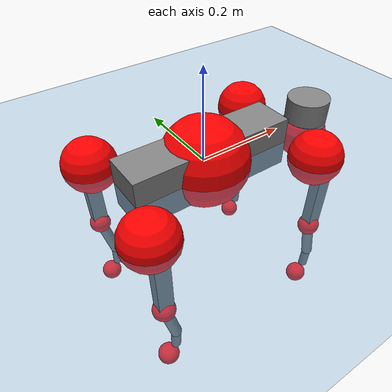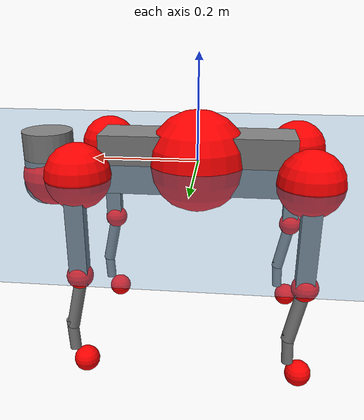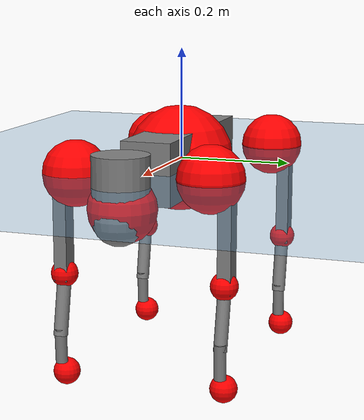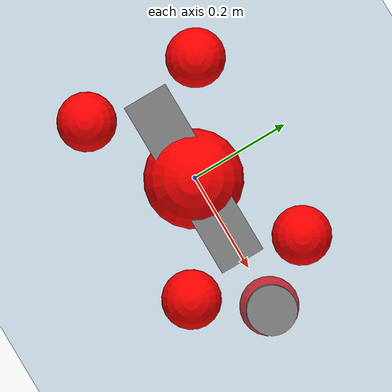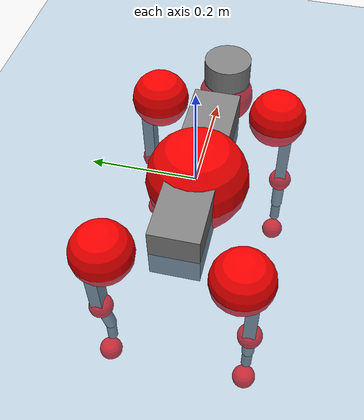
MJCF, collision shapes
<mujoco model="go2">
  <compiler angle="radian" assetdir="assets" balanceinertia="true" inertiafromgeom="false"/>

  <option timestep="0.005" density="1.2" viscosity="2e-05"/>

  <size nkey="1"/>

  <visual>
    <quality shadowsize="8192"/>
    <map shadowclip="0.5"/>
  </visual>

  <default>
    <default class="/">
      <geom contype="0" conaffinity="0" group="1" solref="-1000 -80"/>
      <site size="0.01 0.005 0.005" group="5"/>
      <general forcelimited="true" biastype="affine" gainprm="20" biasprm="0 -20 -0.5"/>
      <default class="go2">
        <joint armature="0.01" damping="0.01" frictionloss="0.2"/>
        <geom condim="1" margin="0.001"/>
        <default class="visual">
          <geom type="mesh" group="2"/>
        </default>
        <default class="collision">
          <geom group="3"/>
          <default class="foot">
            <geom size="0.022 0 0" condim="6" priority="1" friction="0.8 0.02 0.01" solimp="0.015 1 0.022"/>
          </default>
        </default>
        <default class="reward_collision_sphere">
          <geom group="5" rgba="1 0 0 1"/>
        </default>
      </default>
    </default>
  </default>

  <asset>
    <texture type="skybox" colorspace="auto" name="//unnamed_texture_0" builtin="gradient" rgb1="0.95 0.95 0.95" rgb2="0.95 0.95 0.95" width="100" height="600"/>
    <texture type="2d" colorspace="auto" name="texplane" builtin="checker" rgb1="0.345 0.575 0.748" rgb2="0.345 0.575 0.748" markrgb="1 1 1" width="512" height="512"/>
    <material name="MatPlane" class="/" texture="texplane" texuniform="true" texrepeat="2 2" specular="0.9"/>
    <material name="metal" class="/" rgba="0.9 0.95 0.95 1"/>
    <material name="black" class="/" rgba="0 0 0 1"/>
    <material name="white" class="/"/>
    <material name="gray" class="/" rgba="0.671705 0.692426 0.77427 1"/>
    <mesh name="base_0" class="/" file="base_0.obj"/>
    <mesh name="base_1" class="/" file="base_1.obj"/>
    <mesh name="base_2" class="/" file="base_2.obj"/>
    <mesh name="base_3" class="/" file="base_3.obj"/>
    <mesh name="base_4" class="/" file="base_4.obj"/>
    <mesh name="hip_0" class="/" file="hip_0.obj"/>
    <mesh name="hip_1" class="/" file="hip_1.obj"/>
    <mesh name="thigh_0" class="/" file="thigh_0.obj"/>
    <mesh name="thigh_1" class="/" file="thigh_1.obj"/>
    <mesh name="thigh_mirror_0" class="/" file="thigh_mirror_0.obj"/>
    <mesh name="thigh_mirror_1" class="/" file="thigh_mirror_1.obj"/>
    <mesh name="calf_0" class="/" file="calf_0.obj"/>
    <mesh name="calf_1" class="/" file="calf_1.obj"/>
    <mesh name="calf_mirror_0" class="/" file="calf_mirror_0.obj"/>
    <mesh name="calf_mirror_1" class="/" file="calf_mirror_1.obj"/>
    <mesh name="foot" class="/" file="foot.obj"/>
  </asset>

  <worldbody>
    <geom name="floor" class="/" size="100 100 0.125" type="plane" group="0" material="MatPlane"/>
    <light name="toplight_shadow" class="/" pos="0 0 5" dir="0.0990148 0.0990148 -0.990148" type="directional" ambient="0.04 0.04 0.04" diffuse="0.55 0.55 0.55" specular="0.12 0.12 0.12"/>
    <light name="toplight_fill" class="/" pos="0 0 5" dir="0.0990148 0.0990148 -0.990148" type="directional" castshadow="false" ambient="0.04 0.04 0.04" diffuse="0.3 0.3 0.3" specular="0.08 0.08 0.08"/>
    <body name="trunk" childclass="go2" pos="0.000329193 -0.00253485 -0.000177173" quat="1 -8.73511e-06 1.35335e-06 1.00742e-05">
      <inertial pos="0.0210752 -0.00281038 -0.00476195" quat="0.00860058 0.709463 0.00318203 0.704683" mass="6.15356" diaginertia="0.116008 0.111719 0.0109153"/>
      <joint name="//unnamed_joint_0" type="free" armature="0" damping="0" frictionloss="0"/>
      <geom name="//unnamed_geom_1" class="visual" material="black" mesh="base_0"/>
      <geom name="//unnamed_geom_2" class="visual" material="black" mesh="base_1"/>
      <geom name="//unnamed_geom_3" class="visual" material="black" mesh="base_2"/>
      <geom name="//unnamed_geom_4" class="visual" material="white" mesh="base_3"/>
      <geom name="//unnamed_geom_5" class="visual" material="gray" mesh="base_4"/>
      <geom name="trunk_1" class="collision" size="0.181949 0.0452213 0.0551362" type="box"/>
      <geom name="trunk_2" class="collision" size="0.0483651 0.0435286" pos="0.290544 0 0.00851928" type="cylinder"/>
      <geom name="trunk_3" class="collision" size="0.0454632" pos="0.2987 0 -0.0511157"/>
      <geom name="//unnamed_geom_9" class="reward_collision_sphere" size="0.0967302"/>
      <geom name="//unnamed_geom_10" class="reward_collision_sphere" size="0.0580381" pos="0.285447 0 -0.0383368"/>
      <site name="imu" pos="-0.013831 0.00713483 0.0233988" size="0.00967302"/>
      <camera name="track" pos="0 -2.06105 0" quat="0.707107 0.707107 0 0" mode="trackcom"/>
      <camera name="ego_camera" pos="0.31807 0 0.0383368" quat="-0.5 -0.5 0.5 0.5"/>
      <body name="FL_hip" pos="0.19867 0.0503474 0.00271853" quat="0.999999 -0.000681184 -0.000972273 -3.25821e-05">
        <inertial pos="-0.00456402 0.00220274 0.00115122" quat="0.496958 0.500508 0.503902 0.498605" mass="0.590508" diaginertia="0.000971988 0.000662246 0.000215765"/>
        <joint name="FL_hip_joint" pos="0 0 0" axis="0.999998 0.00123081 -0.00139735" stiffness="0.0149971" range="-1.00179 1.0701" armature="0.00937935" damping="0" frictionloss="0.213623"/>
        <geom name="//unnamed_geom_11" class="visual" material="metal" mesh="hip_0"/>
        <geom name="//unnamed_geom_12" class="visual" material="gray" mesh="hip_1"/>
        <geom name="//unnamed_geom_13" class="collision" size="0.0444959 0.019346" pos="0 0.0824418 0" quat="0.707107 0.707107 0 0" type="cylinder"/>
        <geom name="//unnamed_geom_14" class="reward_collision_sphere" size="0.0580381" pos="0 0.0721366 0"/>
        <body name="FL_thigh" pos="0.000113166 0.100707 0.00132641" quat="0.999999 -0.000738063 -0.00088253 0.000554044">
          <inertial pos="-0.0016411 -0.021218 -0.0288137" quat="0.836112 0.0798409 -0.0138604 0.542541" mass="1.04198" diaginertia="0.00656291 0.00684471 0.000399789"/>
          <joint name="FL_thigh_joint" pos="0 0 0" axis="-0.0111333 0.999832 -0.0145595" stiffness="0.00672732" range="-1.55056 3.54538" armature="0.0109589" damping="0" frictionloss="0.192067"/>
          <geom name="//unnamed_geom_15" class="visual" material="metal" mesh="thigh_0"/>
          <geom name="//unnamed_geom_16" class="visual" material="gray" mesh="thigh_1"/>
          <geom name="//unnamed_geom_17" class="collision" size="0.103018 0.0118494 0.0164441" pos="0 0 -0.0907304" quat="0.707107 0 0.707107 0" type="box"/>
          <body name="FL_calf" pos="0.000827667 -0.00311188 -0.181686" quat="1 0.000303142 -6.97668e-05 0.000554145">
            <inertial pos="0.00846653 -0.000440176 -0.122597" quat="0.710886 0.000364986 -0.00334301 0.703299" mass="0.219396" diaginertia="0.00158394 0.00175167 2.29692e-05"/>
            <joint name="FL_calf_joint" pos="0 0 0" axis="-0.00120647 0.999982 -0.00586044" range="-2.7741 -0.839627" armature="0.00878362" damping="0.00337393" frictionloss="0.192199"/>
            <geom name="//unnamed_geom_18" class="visual" material="gray" mesh="calf_0"/>
            <geom name="//unnamed_geom_19" class="visual" material="black" mesh="calf_1"/>
            <geom name="FL_calf0" class="collision" size="0.0116076 0.0580381" pos="0.00815563 0 -0.0511157" quat="0.994493 0 -0.104807 0" type="cylinder"/>
            <geom name="//unnamed_geom_21" class="collision" size="0.0106403 0.0314373" pos="0.0203891 0 -0.126085" quat="0.999688 0 0.0249974 0" type="cylinder"/>
            <geom name="//unnamed_geom_22" class="visual" pos="0 0 -0.181461" quat="1 0 0 0" material="black" mesh="foot"/>
            <geom name="FL_foot" class="foot" size="0.0161607" pos="-0.00203891 0 -0.181461"/>
            <geom name="//unnamed_geom_24" class="reward_collision_sphere" size="0.0241825"/>
            <geom name="//unnamed_geom_25" class="reward_collision_sphere" size="0.0241825" pos="-0.00203891 0 -0.181461"/>
            <site name="FL_foot" class="foot" pos="-0.00203891 0 -0.181461" size="0.00967302"/>
          </body>
        </body>
      </body>
      <body name="FR_hip" pos="0.196545 -0.0495972 -0.00226328" quat="1 -0.000182956 0.000167186 0.000246675">
        <inertial pos="-0.00480939 -0.00289316 -0.00107604" quat="0.499509 0.505266 0.498464 0.49672" mass="0.591916" diaginertia="0.00098012 0.000671452 0.000222188"/>
        <joint name="FR_hip_joint" pos="0 0 0" axis="0.999956 0.00886747 0.00300283" range="-1.04833 1.04297" armature="0.0093129" damping="0.012576" frictionloss="0.190848"/>
        <geom name="//unnamed_geom_26" class="visual" pos="0 1.55584e-09 6.67331e-08" quat="4.63268e-05 1 0 0" material="metal" mesh="hip_0"/>
        <geom name="//unnamed_geom_27" class="visual" pos="0 2.5222e-09 -1.65057e-07" quat="4.63268e-05 1 0 0" material="gray" mesh="hip_1"/>
        <geom name="//unnamed_geom_28" class="collision" size="0.0444959 0.019346" pos="0 -0.0824418 0" quat="0.707107 0.707107 0 0" type="cylinder"/>
        <geom name="//unnamed_geom_29" class="reward_collision_sphere" size="0.0580381" pos="0 -0.0721366 0"/>
        <body name="FR_thigh" pos="0.00289101 -0.0962619 0.00284624" quat="1 -0.000400607 0.000167702 0.00015982">
          <inertial pos="-0.00313882 0.0204908 -0.0280404" quat="0.552136 -0.012602 0.081177 0.829697" mass="1.10827" diaginertia="0.00677036 0.00700428 0.000407639"/>
          <joint name="FR_thigh_joint" pos="0 0 0" axis="0.000460677 -0.999999 0.00154782" stiffness="0.00127316" range="-3.54357 1.57218" armature="0.00948406" damping="0.0103425" frictionloss="0.193793"/>
          <geom name="//unnamed_geom_30" class="visual" material="metal" mesh="thigh_mirror_0"/>
          <geom name="//unnamed_geom_31" class="visual" material="gray" mesh="thigh_mirror_1"/>
          <geom name="//unnamed_geom_32" class="collision" size="0.103018 0.0118494 0.0164441" pos="0 0 -0.0907304" quat="0.707107 0 0.707107 0" type="box"/>
          <body name="FR_calf" pos="-0.00294297 -0.000545723 -0.182931" quat="0.999999 -0.000784601 -0.00102148 -0.000477379">
            <inertial pos="0.00669082 0.000714082 -0.118752" quat="0.698101 -0.000992564 0.00397129 0.715988" mass="0.218032" diaginertia="0.00161877 0.00169664 2.36755e-05"/>
            <joint name="FR_calf_joint" pos="0 0 0" axis="0.00464867 -0.999919 -0.0118109" range="0.817564 2.73183" armature="0.0109192" damping="0.023239" frictionloss="0.167153"/>
            <geom name="//unnamed_geom_33" class="visual" material="gray" mesh="calf_mirror_0"/>
            <geom name="//unnamed_geom_34" class="visual" material="black" mesh="calf_mirror_1"/>
            <geom name="FR_calf0" class="collision" size="0.0125749 0.0580381" pos="0.0101945 0 -0.0511157" quat="0.995004 0 -0.0998334 0" type="cylinder"/>
            <geom name="//unnamed_geom_36" class="collision" size="0.0106403 0.0314373" pos="0.0203891 0 -0.126085" quat="0.999688 0 0.0249974 0" type="cylinder"/>
            <geom name="//unnamed_geom_37" class="visual" pos="0 0 -0.181461" quat="1 0 0 0" material="black" mesh="foot"/>
            <geom name="FR_foot" class="foot" size="0.0205817" pos="-0.00203891 0 -0.181461"/>
            <geom name="//unnamed_geom_39" class="reward_collision_sphere" size="0.0241825"/>
            <geom name="//unnamed_geom_40" class="reward_collision_sphere" size="0.0241825" pos="-0.00203891 0 -0.181461"/>
            <site name="FR_foot" class="foot" pos="-0.00203891 0 -0.181461" size="0.00967302"/>
          </body>
        </body>
      </body>
      <body name="RL_hip" pos="-0.197216 0.049215 0.00146559" quat="1 -7.93765e-05 3.12923e-05 -9.95463e-05">
        <inertial pos="0.00513487 -0.0003747 0.00152291" quat="0.504628 0.500605 0.494467 0.500248" mass="0.610295" diaginertia="0.000974398 0.000696051 0.000216813"/>
        <joint name="RL_hip_joint" pos="0 0 0" axis="-0.999879 -0.0142971 0.0060814" stiffness="0.000787119" range="-1.06679 1.03616" armature="0.00978741" damping="0.0141029" frictionloss="0.18304"/>
        <geom name="//unnamed_geom_41" class="visual" pos="-1.45941e-09 0 -2.86078e-07" quat="4.63268e-05 0 1 0" material="metal" mesh="hip_0"/>
        <geom name="//unnamed_geom_42" class="visual" pos="-2.36588e-09 0 -2.53711e-07" quat="4.63268e-05 0 1 0" material="gray" mesh="hip_1"/>
        <geom name="//unnamed_geom_43" class="collision" size="0.0444959 0.019346" pos="0 0.0824418 0" quat="0.707107 0.707107 0 0" type="cylinder"/>
        <geom name="//unnamed_geom_44" class="reward_collision_sphere" size="0.0580381" pos="0 0.0721366 0"/>
        <body name="RL_thigh" pos="-0.00163297 0.0986862 -0.00171311" quat="1 0.000145127 -0.000377546 0.000353215">
          <inertial pos="-0.0039946 -0.0224625 -0.030693" quat="0.827122 0.086805 -0.0262531 0.554658" mass="1.07276" diaginertia="0.00661576 0.00680283 0.000394702"/>
          <joint name="RL_thigh_joint" pos="0 0 0" axis="0.00174751 0.999998 -0.000294627" stiffness="0.00349238" range="-0.572582 4.57049" armature="0.00967655" damping="0" frictionloss="0.195346"/>
          <geom name="//unnamed_geom_45" class="visual" material="metal" mesh="thigh_0"/>
          <geom name="//unnamed_geom_46" class="visual" material="gray" mesh="thigh_1"/>
          <geom name="//unnamed_geom_47" class="collision" size="0.103018 0.0118494 0.0164441" pos="0 0 -0.0907304" quat="0.707107 0 0.707107 0" type="box"/>
          <body name="RL_calf" pos="-0.00159708 -0.00299381 -0.181991" quat="1 -0.00047596 0.000310771 -1.00893e-05">
            <inertial pos="0.00645686 -0.000787563 -0.11957" quat="0.710674 0.00309703 -0.0056874 0.703492" mass="0.227788" diaginertia="0.00173243 0.00172821 2.43954e-05"/>
            <joint name="RL_calf_joint" pos="0 0 0" axis="0.0117803 0.99993 0.000783557" stiffness="0.000764842" range="-2.66993 -0.886217" armature="0.00999428" damping="0.00169619" frictionloss="0.190934"/>
            <geom name="//unnamed_geom_48" class="visual" material="gray" mesh="calf_0"/>
            <geom name="//unnamed_geom_49" class="visual" material="black" mesh="calf_1"/>
            <geom name="RL_calf0" class="collision" size="0.0125749 0.0580381" pos="0.0101945 0 -0.0511157" quat="0.995004 0 -0.0998334 0" type="cylinder"/>
            <geom name="//unnamed_geom_51" class="collision" size="0.0106403 0.0314373" pos="0.0203891 0 -0.126085" quat="0.999688 0 0.0249974 0" type="cylinder"/>
            <geom name="//unnamed_geom_52" class="visual" pos="0 0 -0.181461" quat="1 0 0 0" material="black" mesh="foot"/>
            <geom name="RL_foot" class="foot" size="0.0187117" pos="-0.00203891 0 -0.181461"/>
            <geom name="//unnamed_geom_54" class="reward_collision_sphere" size="0.0241825"/>
            <geom name="//unnamed_geom_55" class="reward_collision_sphere" size="0.0241825" pos="-0.00203891 0 -0.181461"/>
            <site name="RL_foot" class="foot" pos="-0.00203891 0 -0.181461" size="0.00967302"/>
          </body>
        </body>
      </body>
      <body name="RR_hip" pos="-0.198107 -0.0483017 -0.00313272" quat="0.999999 0.000690887 -0.000727038 -0.000761322">
        <inertial pos="0.00449674 0.000831825 -0.00209154" quat="0.496958 0.500673 0.496013 0.50629" mass="0.628674" diaginertia="0.00102171 0.000704458 0.000226854"/>
        <joint name="RR_hip_joint" pos="0 0 0" axis="-0.99993 -0.0114092 -0.003015" range="-1.03297 0.992534" armature="0.00969239" damping="0.00359309" frictionloss="0.189489"/>
        <geom name="//unnamed_geom_56" class="visual" pos="1.45979e-09 1.55584e-09 -3.52811e-07" quat="2.14617e-09 4.63268e-05 4.63268e-05 -1" material="metal" mesh="hip_0"/>
        <geom name="//unnamed_geom_57" class="visual" pos="2.36493e-09 2.5222e-09 -8.86541e-08" quat="2.14617e-09 4.63268e-05 4.63268e-05 -1" material="gray" mesh="hip_1"/>
        <geom name="//unnamed_geom_58" class="collision" size="0.0444959 0.019346" pos="0 -0.0824418 0" quat="0.707107 0.707107 0 0" type="cylinder"/>
        <geom name="//unnamed_geom_59" class="reward_collision_sphere" size="0.0580381" pos="0 -0.0721366 0"/>
        <body name="RR_thigh" pos="0.000178115 -0.096175 0.00107315" quat="0.999999 -0.000215776 0.00134021 0.000501255">
          <inertial pos="-0.00373259 0.0202867 -0.026215" quat="0.554215 -0.0231591 0.0816383 0.828037" mass="1.02724" diaginertia="0.00641015 0.00669721 0.000385889"/>
          <joint name="RR_thigh_joint" pos="0 0 0" axis="-0.00237208 -0.999974 0.00686366" range="-4.55471 0.553731" armature="0.00946463" damping="0.0182491" frictionloss="0.183364"/>
          <geom name="//unnamed_geom_60" class="visual" material="metal" mesh="thigh_mirror_0"/>
          <geom name="//unnamed_geom_61" class="visual" material="gray" mesh="thigh_mirror_1"/>
          <geom name="//unnamed_geom_62" class="collision" size="0.103018 0.0118494 0.0164441" pos="0 0 -0.0907304" quat="0.707107 0 0.707107 0" type="box"/>
          <body name="RR_calf" pos="-0.00156157 -0.000811157 -0.181567" quat="1 -0.000302769 0.000237219 0.000144974">
            <inertial pos="0.00850873 0.000805219 -0.119561" quat="0.703478 -0.00462915 0.00160743 0.7107" mass="0.218315" diaginertia="0.00170122 0.00172024 2.35809e-05"/>
            <joint name="RR_calf_joint" pos="0 0 0" axis="0.00636321 -0.999963 0.0057383" range="0.783674 2.78077" armature="0.00832741" damping="0.0105469" frictionloss="0.193446"/>
            <geom name="//unnamed_geom_63" class="visual" material="gray" mesh="calf_mirror_0"/>
            <geom name="//unnamed_geom_64" class="visual" material="black" mesh="calf_mirror_1"/>
            <geom name="RR_calf0" class="collision" size="0.0125749 0.0580381" pos="0.0101945 0 -0.0511157" quat="0.995004 0 -0.0998334 0" type="cylinder"/>
            <geom name="//unnamed_geom_66" class="collision" size="0.0106403 0.0314373" pos="0.0203891 0 -0.126085" quat="0.999688 0 0.0249974 0" type="cylinder"/>
            <geom name="//unnamed_geom_67" class="visual" pos="0 0 -0.181461" quat="1 0 0 0" material="black" mesh="foot"/>
            <geom name="RR_foot" class="foot" size="0.0195085" pos="-0.00203891 0 -0.181461"/>
            <geom name="//unnamed_geom_69" class="reward_collision_sphere" size="0.0241825"/>
            <geom name="//unnamed_geom_70" class="reward_collision_sphere" size="0.0241825" pos="-0.00203891 0 -0.181461"/>
            <site name="RR_foot" class="foot" pos="-0.00203891 0 -0.181461" size="0.00967302"/>
          </body>
        </body>
      </body>
    </body>
  </worldbody>

  <contact>
    <pair class="/" geom1="floor" geom2="FL_foot" name="//unnamed_contact_0"/>
    <pair class="/" geom1="floor" geom2="FR_foot" name="//unnamed_contact_1"/>
    <pair class="/" geom1="floor" geom2="RL_foot" name="//unnamed_contact_2"/>
    <pair class="/" geom1="floor" geom2="RR_foot" name="//unnamed_contact_3"/>
  </contact>

  <actuator>
    <general name="FL_hip" class="/" joint="FL_hip_joint" forcerange="-24.9923 24.9923" gainprm="20.743" biasprm="0 -20.743 -0.479125"/>
    <general name="FL_thigh" class="/" joint="FL_thigh_joint" forcerange="-21.2971 21.2971" gainprm="20.743" biasprm="0 -20.743 -0.479125"/>
    <general name="FL_calf" class="/" joint="FL_calf_joint" forcerange="-44.9499 44.9499" gainprm="20.743" biasprm="0 -20.743 -0.479125"/>
    <general name="FR_hip" class="/" joint="FR_hip_joint" forcerange="-25.1991 25.1991" gainprm="20.743" biasprm="0 -20.743 -0.479125"/>
    <general name="FR_thigh" class="/" joint="FR_thigh_joint" forcerange="-25.195 25.195" gainprm="20.743" biasprm="0 -20.743 -0.479125"/>
    <general name="FR_calf" class="/" joint="FR_calf_joint" forcerange="-47.1645 47.1645" gainprm="20.743" biasprm="0 -20.743 -0.479125"/>
    <general name="RL_hip" class="/" joint="RL_hip_joint" forcerange="-23.7592 23.7592" gainprm="20.743" biasprm="0 -20.743 -0.479125"/>
    <general name="RL_thigh" class="/" joint="RL_thigh_joint" forcerange="-22.1843 22.1843" gainprm="20.743" biasprm="0 -20.743 -0.479125"/>
    <general name="RL_calf" class="/" joint="RL_calf_joint" forcerange="-41.5545 41.5545" gainprm="20.743" biasprm="0 -20.743 -0.479125"/>
    <general name="RR_hip" class="/" joint="RR_hip_joint" forcerange="-20.7207 20.7207" gainprm="20.743" biasprm="0 -20.743 -0.479125"/>
    <general name="RR_thigh" class="/" joint="RR_thigh_joint" forcerange="-23.5489 23.5489" gainprm="20.743" biasprm="0 -20.743 -0.479125"/>
    <general name="RR_calf" class="/" joint="RR_calf_joint" forcerange="-43.5213 43.5213" gainprm="20.743" biasprm="0 -20.743 -0.479125"/>
  </actuator>

  <sensor>
    <gyro site="imu" name="imu_angular_velocity"/>
    <velocimeter site="imu" name="imu_linear_velocity"/>
    <framelinvel objtype="site" objname="FL_foot" name="FL_foot_global_linear_velocity"/>
    <framelinvel objtype="site" objname="FR_foot" name="FR_foot_global_linear_velocity"/>
    <framelinvel objtype="site" objname="RL_foot" name="RL_foot_global_linear_velocity"/>
    <framelinvel objtype="site" objname="RR_foot" name="RR_foot_global_linear_velocity"/>
  </sensor>

  <keyframe>
    <key name="home" qpos="0 0 0.325 1 0 0 0 0.1 0.8 -1.5 -0.1 -0.8 1.5 -0.1 0.8 -1.5 0.1 -0.8 1.5"/>
  </keyframe>
</mujoco>
